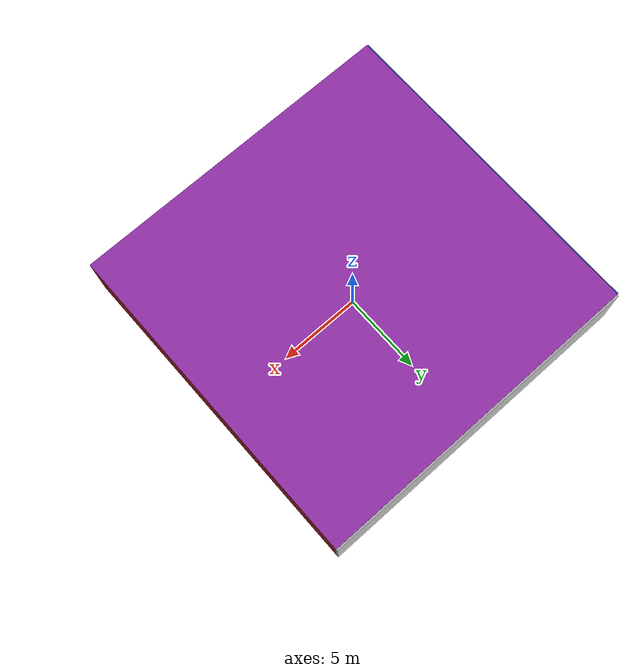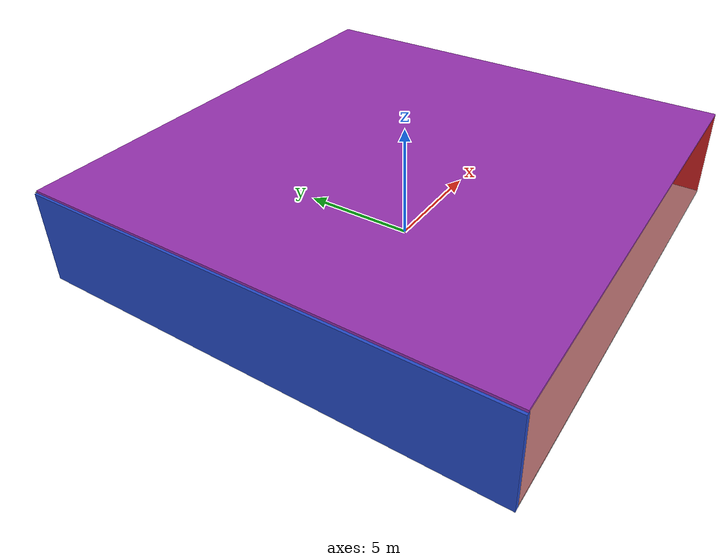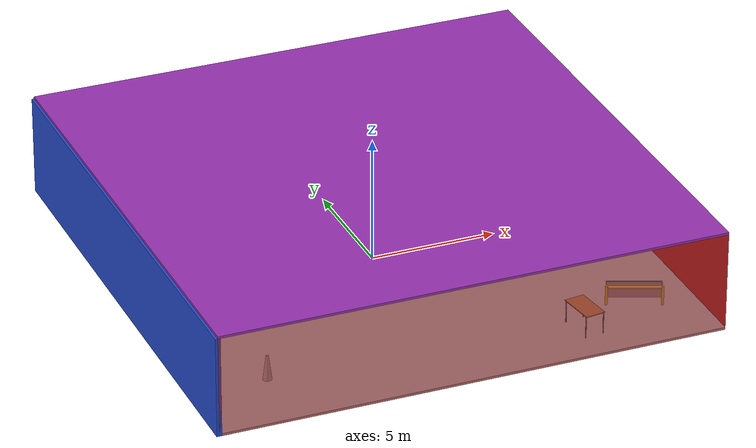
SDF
<sdf version="1.4">
 <world name="default">
  <physics type="ode">
   <max_step_size>0.001</max_step_size>
   <real_time_factor>1</real_time_factor>
   <real_time_update_rate>1000</real_time_update_rate>
   <gravity>0 0 -9.8</gravity>
  </physics>
  <scene><ambient>0.4 0.4 0.4 1</ambient><background>0.7 0.7 0.7 1</background><shadows>1</shadows></scene>
  <model name="Surrounding">
   <static>1</static>
   <link name="Ceiling">
    <collision name="Ceiling_Collision"><geometry><box><size>20 20 0.1</size></box></geometry></collision>
    <visual name="Ceiling_Visual">
     <geometry><box><size>20 20 0.1</size></box></geometry>
     <material>
      <script><uri>file://media/materials/scripts/gazebo.material</uri><name>Gazebo/Purple</name></script>
     </material>
    </visual>
    <pose>0 0 4.05 0 0 0</pose>
   </link>
   <link name="Wall_South">
    <collision name="Wall_South_Collision">
     <geometry><box><size>20 0 4</size></box></geometry>
     <pose>0 0 2 0 -0 0</pose>
    </collision>
    <visual name="Wall_South_Visual">
     <pose>0 0 2 0 -0 0</pose>
     <geometry><box><size>20 0 4</size></box></geometry>
     <material>
      <script><uri>file://media/materials/scripts/gazebo.material</uri><name>Gazebo/RedTransparent</name></script>
     </material>
    </visual>
    <velocity_decay><linear>0</linear><angular>0</angular></velocity_decay>
    <pose>0 -10 0 0 -0 0</pose>
   </link>
   <link name="Wall_East">
    <collision name="Wall_21_Collision">
     <geometry><box><size>20 0 4</size></box></geometry>
     <pose>0 0 2 0 -0 0</pose>
    </collision>
    <visual name="Wall_21_Visual">
     <pose>0 0 2 0 -0 0</pose>
     <geometry><box><size>20 0 4</size></box></geometry>
     <material>
      <script><uri>file://media/materials/scripts/gazebo.material</uri><name>Gazebo/RedGlow</name></script>
     </material>
    </visual>
    <velocity_decay><linear>0</linear><angular>0</angular></velocity_decay>
    <pose>10 0 0 0 -0 1.5708</pose>
   </link>
   <link name="Wall_North">
    <collision name="Wall_22_Collision">
     <geometry><box><size>20 0.2 4</size></box></geometry>
     <pose>0 0 2 0 -0 0</pose>
    </collision>
    <visual name="Wall_22_Visual">
     <pose>0 0 2 0 -0 0</pose>
     <geometry><box><size>20 0.2 4</size></box></geometry>
     <material>
      <script><uri>file://media/materials/scripts/gazebo.material</uri><name>Gazebo/JointAnchor</name></script>
     </material>
    </visual>
    <velocity_decay><linear>0</linear><angular>0</angular></velocity_decay>
    <pose>0 10 0 0 -0 0</pose>
   </link>
   <link name="Wall_West">
    <collision name="Wall_23_Collision">
     <geometry><box><size>20 0.2 4</size></box></geometry>
     <pose>0 0 2 0 -0 0</pose>
    </collision>
    <visual name="Wall_23_Visual">
     <pose>0 0 2 0 -0 0</pose>
     <geometry><box><size>20 0.2 4</size></box></geometry>
     <material>
      <script><uri>file://media/materials/scripts/gazebo.material</uri><name>Gazebo/BlueGlow</name></script>
     </material>
    </visual>
    <velocity_decay><linear>0</linear><angular>0</angular></velocity_decay>
    <pose>-10 0 0 0 0 -1.5708</pose>
   </link>
   <link name="Ground_link">
    <collision name="collision">
     <pose>0 0 .05 0 -0 0</pose>
     <geometry><box><size>20 20 0.1</size></box></geometry>
    </collision>
    <visual name="visual">
     <pose>0 0 .05 0 -0 0</pose>
     <geometry><box><size>20 20 0.1</size></box></geometry>
     <material>
      <script><uri>file://media/materials/scripts/gazebo.material</uri><name>Gazebo/LightOff</name></script>
     </material>
    </visual>
   </link>
   <static>1</static>
  </model>
  <spherical_coordinates>
   <surface_model>EARTH_WGS84</surface_model>
   <latitude_deg>0</latitude_deg>
   <longitude_deg>0</longitude_deg>
   <elevation>0</elevation>
   <heading_deg>0</heading_deg>
  </spherical_coordinates>
  <light name="lightball_0" type="diffuse">
   <diffuse>0.8 0.8 0.8 1</diffuse>
   <specular>0.2 0.2 0.2 1</specular>
   <attenuation>
    <range>100</range>
    <constant>0.7</constant>
    <linear>0.01</linear>
    <quadratic>0.001</quadratic>
   </attenuation>
   <direction>-0.5 0.1 -0.9</direction>
   <pose>9.56714391754 -7.19185059271 1.71366561768 0 0 0</pose>
  </light>
  <light name="lightball_1" type="diffuse">
   <diffuse>0.8 0.8 0.8 1</diffuse>
   <specular>0.2 0.2 0.2 1</specular>
   <attenuation>
    <range>100</range>
    <constant>0.7</constant>
    <linear>0.01</linear>
    <quadratic>0.001</quadratic>
   </attenuation>
   <direction>-0.5 0.1 -0.9</direction>
   <pose>4.95590881896 -7.05785520523 3.64716967405 0 0 0</pose>
  </light>
  <light name="lightball_2" type="diffuse">
   <diffuse>0.8 0.8 0.8 1</diffuse>
   <specular>0.2 0.2 0.2 1</specular>
   <attenuation>
    <range>100</range>
    <constant>0.7</constant>
    <linear>0.01</linear>
    <quadratic>0.001</quadratic>
   </attenuation>
   <direction>-0.5 0.1 -0.9</direction>
   <pose>8.15938266838 -0.473805447729 2.23141859369 0 0 0</pose>
  </light>
  <light name="lightball_3" type="diffuse">
   <diffuse>0.8 0.8 0.8 1</diffuse>
   <specular>0.2 0.2 0.2 1</specular>
   <attenuation>
    <range>100</range>
    <constant>0.7</constant>
    <linear>0.01</linear>
    <quadratic>0.001</quadratic>
   </attenuation>
   <direction>-0.5 0.1 -0.9</direction>
   <pose>-7.12982253762 -6.07728135498 2.90344117446 0 0 0</pose>
  </light>
  <light name="lightball_4" type="diffuse">
   <diffuse>0.8 0.8 0.8 1</diffuse>
   <specular>0.2 0.2 0.2 1</specular>
   <attenuation>
    <range>100</range>
    <constant>0.7</constant>
    <linear>0.01</linear>
    <quadratic>0.001</quadratic>
   </attenuation>
   <direction>-0.5 0.1 -0.9</direction>
   <pose>8.15996004301 7.51384995191 2.52143281749 0 0 0</pose>
  </light>
  <light name="lightball_5" type="diffuse">
   <diffuse>0.8 0.8 0.8 1</diffuse>
   <specular>0.2 0.2 0.2 1</specular>
   <attenuation>
    <range>100</range>
    <constant>0.7</constant>
    <linear>0.01</linear>
    <quadratic>0.001</quadratic>
   </attenuation>
   <direction>-0.5 0.1 -0.9</direction>
   <pose>6.97418766913 -9.78227796567 0.972972638241 0 0 0</pose>
  </light>
  <include>
   <uri>model://construction_cone</uri>
   <pose>-7.02461670156 -7.06256042817 0 0 0 1.61123533653</pose>
  </include>
  <include><uri>model://cabinet</uri><pose>-7.37349152358 4.31023182211 0 0 0 0.856056371088</pose></include>
  <include><uri>model://cabinet</uri><pose>0.705845863878 -2.22197999503 0 0 0 1.68856199839</pose></include>
  <include><uri>model://table</uri><pose>5.17543633406 -8.02735805656 0 0 0 1.70956722587</pose></include>
  <include>
   <uri>model://robocup_3Dsim_goal</uri>
   <pose>3.97451454019 1.57624308103 0 0 0 2.58162187975</pose>
  </include>
  <include><uri>model://table</uri><pose>3.91376009133 7.8065782681 0 0 0 1.45712016041</pose></include>
  <include>
   <uri>model://robocup_3Dsim_goal</uri>
   <pose>7.59842639595 -7.19326033484 0 0 0 1.17976592557</pose>
  </include>
 </world>
</sdf>

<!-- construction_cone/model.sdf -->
<sdf version="1.5">
  <model name="Construction Cone">
    <link name="link">
      <collision name="collision">
        <geometry>
          <mesh>
            <scale>10 10 10</scale>
            <uri>file://isr-testbed/construction_cone/meshes/construction_cone.dae</uri>
          </mesh>
        </geometry>
      </collision>
      <visual name="visual">
        <geometry>
          <mesh>
            <scale>10 10 10</scale>
            <uri>file://isr-testbed/construction_cone/meshes/construction_cone.dae</uri>
          </mesh>
        </geometry>
      </visual>
    </link>
  </model>
</sdf>

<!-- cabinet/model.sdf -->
<sdf version="1.5">
  <model name="cabinet">
    <static>true</static>
    <link name="cabinet_bottom_plate">
      <inertial>
        <pose>0 0 -1 0 0 0</pose>
        <inertia>
          <ixx>2.050000</ixx>
          <ixy>0</ixy>
          <ixz>0</ixz>
          <iyy>2.050000</iyy>
          <iyz>0</iyz>
          <izz>2.050000</izz>
        </inertia>
        <mass>25.000000</mass>
      </inertial>
      <collision name="cabinet_bottom_plate_geom">
        <pose>0 0 0.010000 0 0 0</pose>
        <geometry>
          <box>
            <size>0.450000 0.450000 0.020000</size>
          </box>
        </geometry>
      </collision>
      <visual name="cabinet_bottom_plate_geom_visual">
        <pose>0 0 0.010000 0 0 0</pose>
        <geometry>
          <box>
            <size>0.450000 0.450000 0.020000</size>
          </box>
        </geometry>
        <material>
          <script>
            <uri>model://media/materials/scripts/gazebo.material</uri>
            <name>Gazebo/Wood</name>
          </script>
        </material>
      </visual>
      <collision name="cabinet_bottom_plate_geom_cabinet_back_plate">
        <pose>0.235000 0 0.510000 0 0 0</pose>
        <geometry>
          <box>
            <size>0.020000 0.450000 1.020000</size>
          </box>
        </geometry>
      </collision>
      <visual name="cabinet_bottom_plate_geom_cabinet_back_plate_visual">
        <pose>0.235000 0 0.510000 0 0 0</pose>
        <geometry>
          <box>
            <size>0.020000 0.450000 1.020000</size>
          </box>
        </geometry>
        <material>
          <script>
            <uri>model://media/materials/scripts/gazebo.material</uri>
            <name>Gazebo/Wood</name>
          </script>
        </material>
      </visual>
      <collision name="cabinet_bottom_plate_geom_cabinet_left_plate">
        <pose>0 0.235000 0.510000 0 0 0</pose>
        <geometry>
          <box>
            <size>0.450000 0.020000 1.020000</size>
          </box>
        </geometry>
      </collision>
      <visual name="cabinet_bottom_plate_geom_cabinet_left_plate_visual">
        <pose>0 0.235000 0.510000 0 0 0</pose>
        <geometry>
          <box>
            <size>0.450000 0.020000 1.020000</size>
          </box>
        </geometry>
        <material>
          <script>
            <uri>model://media/materials/scripts/gazebo.material</uri>
            <name>Gazebo/Wood</name>
          </script>
        </material>
      </visual>
      <collision name="cabinet_bottom_plate_geom_cabinet_middle_plate">
        <pose>0 0 0.510000 0 0 0</pose>
        <geometry>
          <box>
            <size>0.450000 0.450000 0.020000</size>
          </box>
        </geometry>
      </collision>
      <visual name="cabinet_bottom_plate_geom_cabinet_middle_plate_visual">
        <pose>0 0 0.510000 0 0 0</pose>
        <geometry>
          <box>
            <size>0.450000 0.450000 0.020000</size>
          </box>
        </geometry>
        <material>
          <script>
            <uri>model://media/materials/scripts/gazebo.material</uri>
            <name>Gazebo/Wood</name>
          </script>
        </material>
      </visual>
      <collision name="cabinet_bottom_plate_geom_cabinet_right_plate">
        <pose>0 -0.235000 0.510000 0 0 0</pose>
        <geometry>
          <box>
            <size>0.450000 0.020000 1.020000</size>
          </box>
        </geometry>
      </collision>
      <visual name="cabinet_bottom_plate_geom_cabinet_right_plate_visual">
        <pose>0 -0.235000 0.510000 0 0 0</pose>
        <geometry>
          <box>
            <size>0.450000 0.020000 1.020000</size>
          </box>
        </geometry>
        <material>
          <script>
            <uri>model://media/materials/scripts/gazebo.material</uri>
            <name>Gazebo/Wood</name>
          </script>
        </material>
      </visual>
      <collision name="cabinet_bottom_plate_geom_cabinet_top_plate">
        <pose>0 0 1.010000 0 0 0</pose>
        <geometry>
          <box>
            <size>0.450000 0.450000 0.020000</size>
          </box>
        </geometry>
      </collision>
      <visual name="cabinet_bottom_plate_geom_cabinet_top_plate_visual">
        <pose>0 0 1.010000 0 0 0</pose>
        <geometry>
          <box>
            <size>0.450000 0.450000 0.020000</size>
          </box>
        </geometry>
        <material>
          <script>
            <uri>model://media/materials/scripts/gazebo.material</uri>
            <name>Gazebo/Wood</name>
          </script>
        </material>
      </visual>
    </link>
  </model>
</sdf>

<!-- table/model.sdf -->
<sdf version="1.5">
  <model name="table">
    <static>true</static>
    <link name="link">
      <collision name="surface">
        <pose>0 0 1.0 0 0 0</pose>
        <geometry>
          <box>
            <size>1.5 0.8 0.03</size>
          </box>
        </geometry>
        <surface>
          <friction>
            <ode>
              <mu>0.6</mu>
              <mu2>0.6</mu2>
            </ode>
          </friction>
        </surface>
      </collision>
      <visual name="visual1">
        <pose>0 0 1.0 0 0 0</pose>
        <geometry>
          <box>
            <size>1.5 0.8 0.03</size>
          </box>
        </geometry>
        <material>
          <script>
            <uri>model://media/materials/scripts/gazebo.material</uri>
            <name>Gazebo/Wood</name>
          </script>
        </material>
      </visual>
      <collision name="front_left_leg">
        <pose>0.68 0.38 0.5 0 0 0</pose>
        <geometry>
          <cylinder>
            <radius>0.02</radius>
            <length>1.0</length>
          </cylinder>
        </geometry>
      </collision>
      <visual name="front_left_leg">
        <pose>0.68 0.38 0.5 0 0 0</pose>
        <geometry>
          <cylinder>
            <radius>0.02</radius>
            <length>1.0</length>
          </cylinder>
        </geometry>
        <material>
          <script>
            <uri>model://media/materials/scripts/gazebo.material</uri>
            <name>Gazebo/Grey</name>
          </script>
        </material>
      </visual>
      <collision name="front_right_leg">
        <pose>0.68 -0.38 0.5 0 0 0</pose>
        <geometry>
          <cylinder>
            <radius>0.02</radius>
            <length>1.0</length>
          </cylinder>
        </geometry>
      </collision>
      <visual name="front_right_leg">
        <pose>0.68 -0.38 0.5 0 0 0</pose>
        <geometry>
          <cylinder>
            <radius>0.02</radius>
            <length>1.0</length>
          </cylinder>
        </geometry>
        <material>
          <script>
            <uri>model://media/materials/scripts/gazebo.material</uri>
            <name>Gazebo/Grey</name>
          </script>
        </material>
      </visual>
      <collision name="back_right_leg">
        <pose>-0.68 -0.38 0.5 0 0 0</pose>
        <geometry>
          <cylinder>
            <radius>0.02</radius>
            <length>1.0</length>
          </cylinder>
        </geometry>
      </collision>
      <visual name="back_right_leg">
        <pose>-0.68 -0.38 0.5 0 0 0</pose>
        <geometry>
          <cylinder>
            <radius>0.02</radius>
            <length>1.0</length>
          </cylinder>
        </geometry>
        <material>
          <script>
            <uri>model://media/materials/scripts/gazebo.material</uri>
            <name>Gazebo/Grey</name>
          </script>
        </material>
      </visual>
      <collision name="back_left_leg">
        <pose>-0.68 0.38 0.5 0 0 0</pose>
        <geometry>
          <cylinder>
            <radius>0.02</radius>
            <length>1.0</length>
          </cylinder>
        </geometry>
      </collision>
      <visual name="back_left_leg">
        <pose>-0.68 0.38 0.5 0 0 0</pose>
        <geometry>
          <cylinder>
            <radius>0.02</radius>
            <length>1.0</length>
          </cylinder>
        </geometry>
        <material>
          <script>
            <uri>model://media/materials/scripts/gazebo.material</uri>
            <name>Gazebo/Grey</name>
          </script>
        </material>
      </visual>
    </link>
  </model>
</sdf>

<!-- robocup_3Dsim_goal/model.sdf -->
<sdf version="1.5">
  <model name="robocup_3d_goal">
    <static>true</static>
    <link name="left_post">
      <pose>0 1.05 0.45 0 0 0</pose>
      <collision name="collision">
        <geometry>
          <cylinder>
            <radius>0.05</radius>
            <length>0.9</length>
          </cylinder>
        </geometry>
      </collision>
      <visual name="visual">
        <geometry>
          <cylinder>
            <radius>0.05</radius>
            <length>0.9</length>
          </cylinder>
        </geometry>
        <material>
          <script>
            <uri>file://media/materials/scripts/gazebo.material</uri>
            <name>Gazebo/ZincYellow</name>
          </script>
        </material>
      </visual>
    </link>
    <link name="left_support_horiz_lower">
      <pose>0.30 1.05 0.01 0 0 0</pose>
      <collision name="collision">
        <geometry>
          <box>
            <size>0.50 0.02 0.02</size>
          </box>
        </geometry>
      </collision>
      <visual name="visual">
        <geometry>
          <box>
            <size>0.50 0.02 0.02</size>
          </box>
        </geometry>
        <material>
          <script>
            <uri>file://media/materials/scripts/gazebo.material</uri>
            <name>Gazebo/White</name>
          </script>
        </material>
      </visual>
    </link>
    <link name="left_support_horiz_upper">
      <pose>0.30 1.05 0.79 0 0 0</pose>
      <collision name="collision">
        <geometry>
          <box>
            <size>0.50 0.02 0.02</size>
          </box>
        </geometry>
      </collision>
      <visual name="visual">
        <geometry>
          <box>
            <size>0.50 0.02 0.02</size>
          </box>
        </geometry>
        <material>
          <script>
            <uri>file://media/materials/scripts/gazebo.material</uri>
            <name>Gazebo/White</name>
          </script>
        </material>
      </visual>
    </link>
    <link name="left_support_vertical">
      <pose>0.56 1.05 0.4 0 1.5708 0</pose>
      <collision name="collision">
        <geometry>
          <box>
            <size>0.80 0.02 0.02</size>
          </box>
        </geometry>
      </collision>
      <visual name="visual">
        <geometry>
          <box>
            <size>0.80 0.02 0.02</size>
          </box>
        </geometry>
        <material>
          <script>
            <uri>file://media/materials/scripts/gazebo.material</uri>
            <name>Gazebo/White</name>
          </script>
        </material>
      </visual>
    </link>
    <link name="right_support_horiz_lower">
      <pose>0.30 -1.05 0.01 0 0 0</pose>
      <collision name="collision">
        <geometry>
          <box>
            <size>0.50 0.02 0.02</size>
          </box>
        </geometry>
      </collision>
      <visual name="visual">
        <geometry>
          <box>
            <size>0.50 0.02 0.02</size>
          </box>
        </geometry>
        <material>
          <script>
            <uri>file://media/materials/scripts/gazebo.material</uri>
            <name>Gazebo/White</name>
          </script>
        </material>
      </visual>
    </link>
    <link name="right_support_horiz_upper">
      <pose>0.30 -1.05 0.79 0 0 0</pose>
      <collision name="collision">
        <geometry>
          <box>
            <size>0.50 0.02 0.02</size>
          </box>
        </geometry>
      </collision>
      <visual name="visual">
        <geometry>
          <box>
            <size>0.50 0.02 0.02</size>
          </box>
        </geometry>
        <material>
          <script>
            <uri>file://media/materials/scripts/gazebo.material</uri>
            <name>Gazebo/White</name>
          </script>
        </material>
      </visual>
    </link>
    <link name="right_support_vertical">
      <pose>0.56 -1.05 0.4 0 1.5708 0</pose>
      <collision name="collision">
        <geometry>
          <box>
            <size>0.80 0.02 0.02</size>
          </box>
        </geometry>
      </collision>
      <visual name="visual">
        <geometry>
          <box>
            <size>0.80 0.02 0.02</size>
          </box>
        </geometry>
        <material>
          <script>
            <uri>file://media/materials/scripts/gazebo.material</uri>
            <name>Gazebo/White</name>
          </script>
        </material>
      </visual>
    </link>
    <link name="center_support_horiz_lower">
      <pose>0.56 0 0.01 0 1.5708 0</pose>
      <collision name="collision">
        <geometry>
          <box>
            <size>0.02 2.08 0.02</size>
          </box>
        </geometry>
      </collision>
      <visual name="visual">
        <geometry>
          <box>
            <size>0.02 2.08 0.02</size>
          </box>
        </geometry>
        <material>
          <script>
            <uri>file://media/materials/scripts/gazebo.material</uri>
            <name>Gazebo/White</name>
          </script>
        </material>
      </visual>
    </link>
    <link name="center_support_horiz_upper">
      <pose>0.56 0 0.79 0 1.5708 0</pose>
      <collision name="collision">
        <geometry>
          <box>
            <size>0.02 2.08 0.02</size>
          </box>
        </geometry>
      </collision>
      <visual name="visual">
        <geometry>
          <box>
            <size>0.02 2.08 0.02</size>
          </box>
        </geometry>
        <material>
          <script>
            <uri>file://media/materials/scripts/gazebo.material</uri>
            <name>Gazebo/White</name>
          </script>
        </material>
      </visual>
    </link>
    <link name="right_post">
      <pose>0 -1.05 0.45 0 0 0</pose>
      <collision name="collision">
        <geometry>
          <cylinder>
            <radius>0.05</radius>
            <length>0.9</length>
          </cylinder>
        </geometry>
      </collision>
      <visual name="visual">
        <geometry>
          <cylinder>
            <radius>0.05</radius>
            <length>0.9</length>
          </cylinder>
        </geometry>
        <material>
          <script>
            <uri>file://media/materials/scripts/gazebo.material</uri>
            <name>Gazebo/ZincYellow</name>
          </script>
        </material>
      </visual>
    </link>
    <link name="crossbar">
      <pose>0 0 0.85 1.57 1.57 0</pose>
      <collision name="collision">
        <geometry>
          <cylinder>
            <radius>0.05</radius>
            <length>2.0</length>
          </cylinder>
        </geometry>
      </collision>
      <visual name="visual">
        <geometry>
          <cylinder>
            <radius>0.05</radius>
            <length>2.0</length>
          </cylinder>
        </geometry>
        <material>
          <script>
            <uri>file://media/materials/scripts/gazebo.material</uri>
            <name>Gazebo/ZincYellow</name>
          </script>
        </material>
      </visual>
    </link>
    <link name="center_net">
      <pose>0.56 0 0.40 0 0 0</pose>
      <collision name="collision">
        <geometry>
          <box>
            <size>0.01 2.1 0.80</size>
          </box>
        </geometry>
      </collision>
      <visual name="visual">
        <geometry>
          <box>
            <size>0.01 2.1 0.80</size>
          </box>
        </geometry>
        <material>
          <script>
            <uri>model://../model_source/models/robocup09_spl_field/materials/scripts/</uri>
            <uri>model://../model_source/models/robocup09_spl_field/materials/textures/</uri>
            <name>RoboCup/Net</name>
          </script>
        </material>
      </visual>
    </link>
    <link name="left_net">
      <pose>0.30 1.05 0.40 0 0 0</pose>
      <collision name="collision">
        <geometry>
          <box>
            <size>0.50 0.01 0.76</size>
          </box>
        </geometry>
      </collision>
      <visual name="visual">
        <geometry>
          <box>
            <size>0.50 0.01 0.76</size>
          </box>
        </geometry>
        <material>
          <script>
            <uri>model://../model_source/models/robocup09_spl_field/materials/scripts/</uri>
            <uri>model://../model_source/models/robocup09_spl_field/materials/textures/</uri>
            <name>RoboCup/Net</name>
          </script>
        </material>
      </visual>
    </link>
    <link name="right_net">
      <pose>0.30 -1.05 0.40 0 0 0</pose>
      <collision name="collision">
        <geometry>
          <box>
            <size>0.50 0.01 0.76</size>
          </box>
        </geometry>
      </collision>
      <visual name="visual">
        <geometry>
          <box>
            <size>0.50 0.01 0.76</size>
          </box>
        </geometry>
        <material>
          <script>
            <uri>model://../model_source/models/robocup09_spl_field/materials/scripts/</uri>
            <uri>model://../model_source/models/robocup09_spl_field/materials/textures/</uri>
            <name>RoboCup/Net</name>
          </script>
        </material>
      </visual>
    </link>
  </model>
</sdf>
